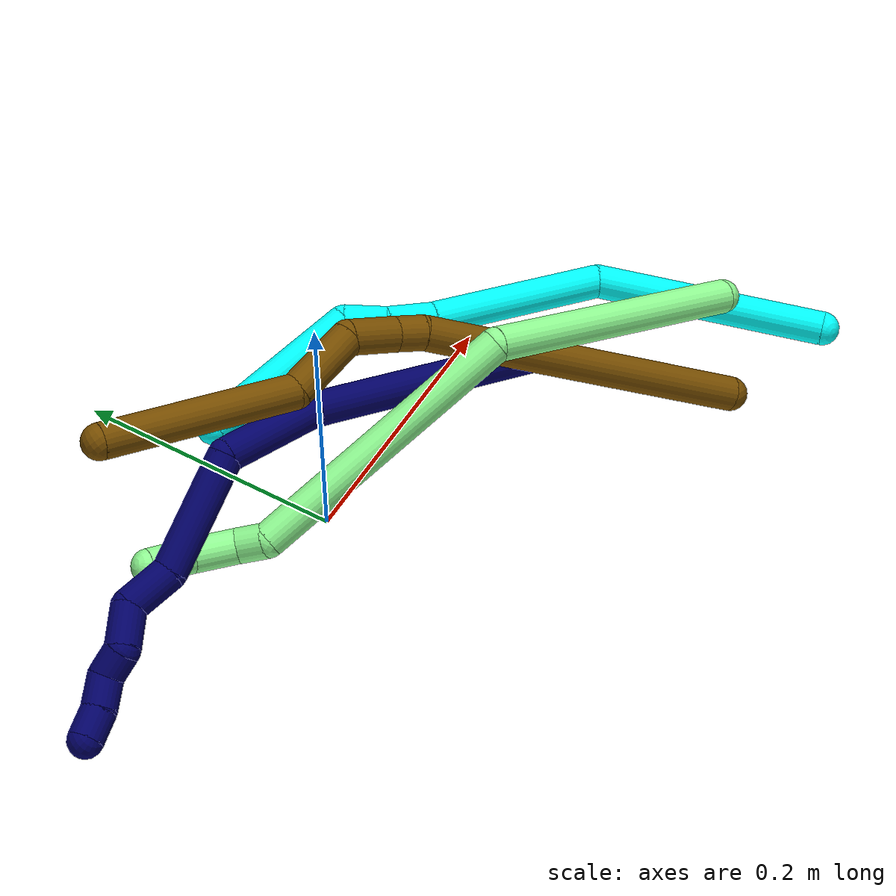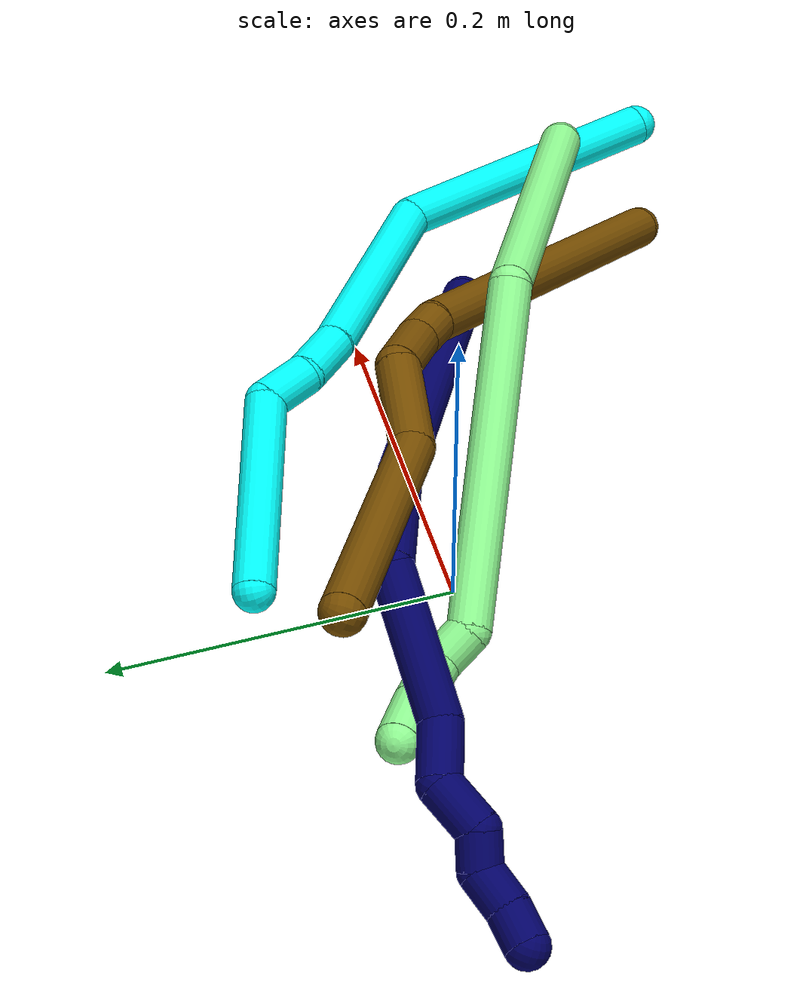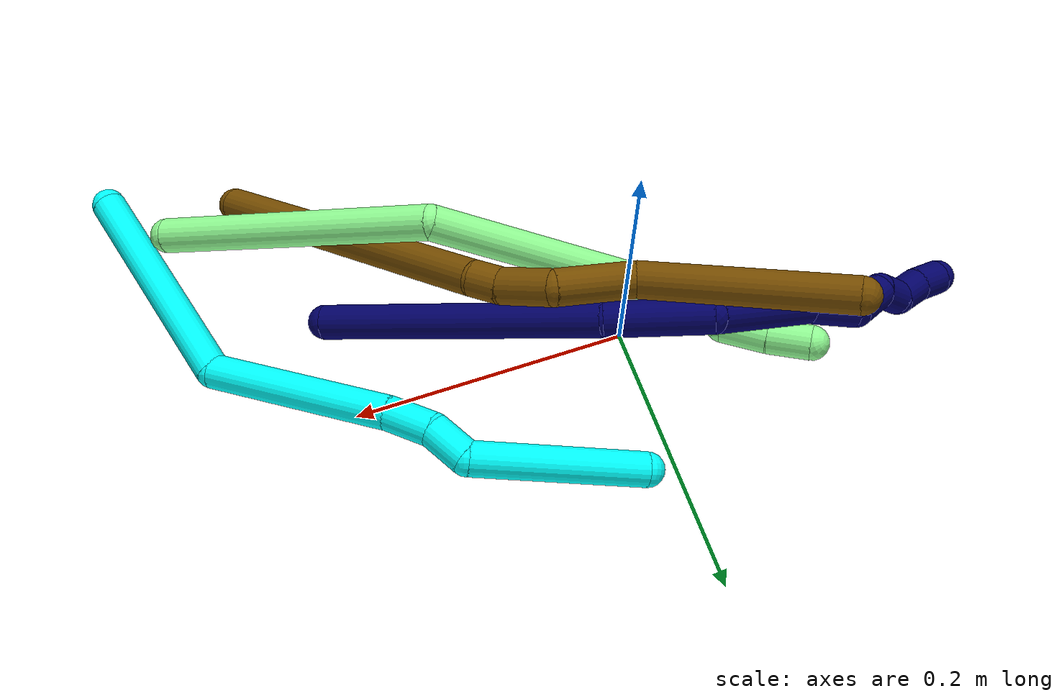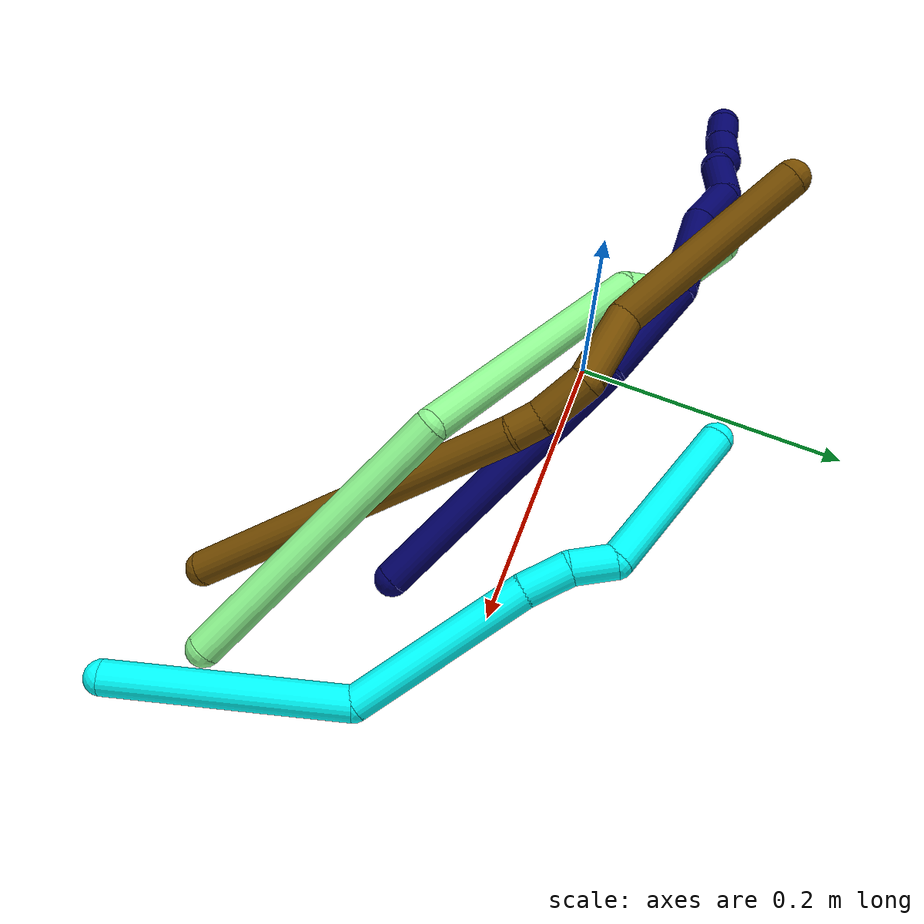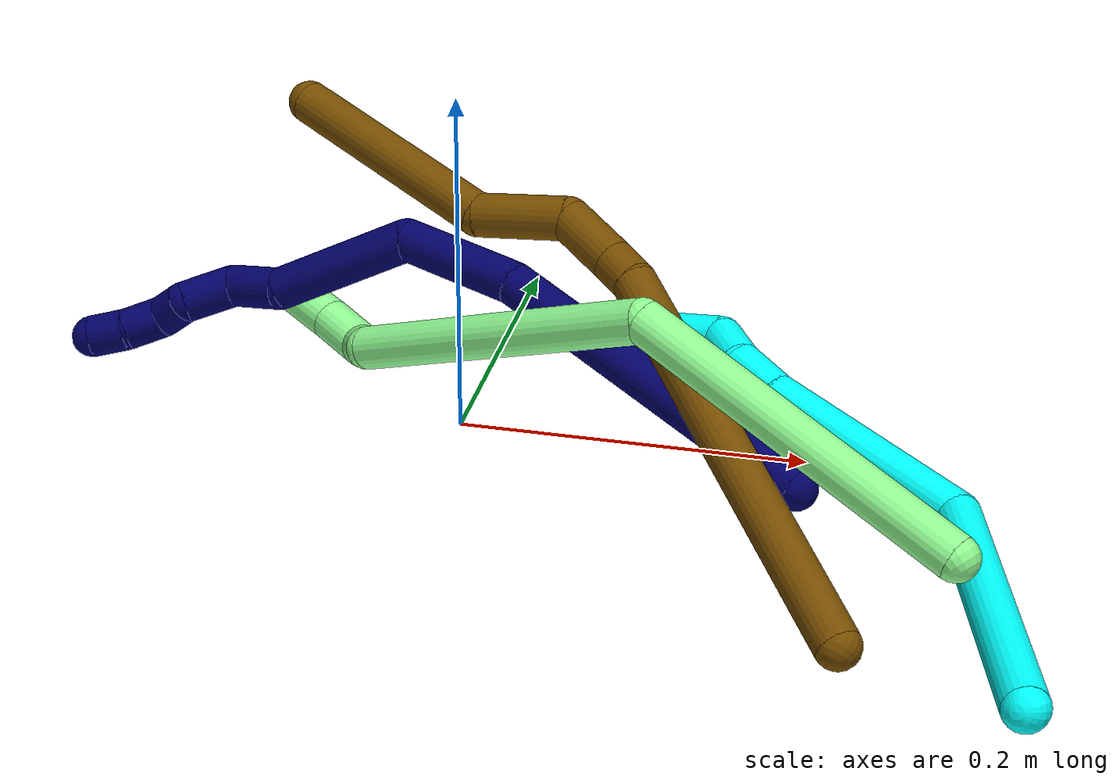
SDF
<sdf version="1.7">
 <world name="default">
  <model name="3">
   <static>0</static>
   <link name="3">
    <collision name="collision-cylinder-e_1_1_4">
     <pose>-0.030642 0.047028 -0.065267 -2.51721 -0.36394 1.03632</pose>
     <geometry><cylinder><radius>0.0125</radius><length>0.172167</length></cylinder></geometry>
     <surface>
      <friction><ode><mu>1.16</mu><mu2>1.16</mu2><slip1>0</slip1><slip2>0</slip2></ode></friction>
      <contact><ode><kp>1e+06</kp><kd>1</kd><max_vel>0</max_vel><min_depth>0.001</min_depth></ode></contact>
     </surface>
    </collision>
    <visual name="visual-cylinder-e_1_1_4">
     <pose>-0.030642 0.047028 -0.065267 -2.51721 -0.36394 1.03632</pose>
     <geometry><cylinder><radius>0.0125</radius><length>0.172167</length></cylinder></geometry>
     <material><ambient>0.003922 1 0.996078 1</ambient></material>
    </visual>
    <collision name="collision-cylinder-e_2_4_5">
     <pose>-0.110341 0.1388 -0.144835 -1.88016 -0.807086 1.05823</pose>
     <geometry><cylinder><radius>0.0125</radius><length>0.135839</length></cylinder></geometry>
     <surface>
      <friction><ode><mu>1.16</mu><mu2>1.16</mu2><slip1>0</slip1><slip2>0</slip2></ode></friction>
      <contact><ode><kp>1e+06</kp><kd>1</kd><max_vel>0</max_vel><min_depth>0.001</min_depth></ode></contact>
     </surface>
    </collision>
    <visual name="visual-cylinder-e_2_4_5">
     <pose>-0.110341 0.1388 -0.144835 -1.88016 -0.807086 1.05823</pose>
     <geometry><cylinder><radius>0.0125</radius><length>0.135839</length></cylinder></geometry>
     <material><ambient>0.003922 1 0.996078 1</ambient></material>
    </visual>
    <collision name="collision-cylinder-e_3_5_6">
     <pose>-0.170704 0.19571 -0.164805 -2.00684 -0.700065 1.04044</pose>
     <geometry><cylinder><radius>0.0125</radius><length>0.035101</length></cylinder></geometry>
     <surface>
      <friction><ode><mu>1.16</mu><mu2>1.16</mu2><slip1>0</slip1><slip2>0</slip2></ode></friction>
      <contact><ode><kp>1e+06</kp><kd>1</kd><max_vel>0</max_vel><min_depth>0.001</min_depth></ode></contact>
     </surface>
    </collision>
    <visual name="visual-cylinder-e_3_5_6">
     <pose>-0.170704 0.19571 -0.164805 -2.00684 -0.700065 1.04044</pose>
     <geometry><cylinder><radius>0.0125</radius><length>0.035101</length></cylinder></geometry>
     <material><ambient>0.003922 1 0.996078 1</ambient></material>
    </visual>
    <collision name="collision-cylinder-e_4_6_7">
     <pose>-0.190387 0.217385 -0.179982 -2.35612 -0.557047 1.20836</pose>
     <geometry><cylinder><radius>0.0125</radius><length>0.031683</length></cylinder></geometry>
     <surface>
      <friction><ode><mu>1.16</mu><mu2>1.16</mu2><slip1>0</slip1><slip2>0</slip2></ode></friction>
      <contact><ode><kp>1e+06</kp><kd>1</kd><max_vel>0</max_vel><min_depth>0.001</min_depth></ode></contact>
     </surface>
    </collision>
    <visual name="visual-cylinder-e_4_6_7">
     <pose>-0.190387 0.217385 -0.179982 -2.35612 -0.557047 1.20836</pose>
     <geometry><cylinder><radius>0.0125</radius><length>0.031683</length></cylinder></geometry>
     <material><ambient>0.003922 1 0.996078 1</ambient></material>
    </visual>
    <collision name="collision-cylinder-e_5_7_2">
     <pose>-0.257874 0.247451 -0.191091 -1.64857 -1.23518 1.30957</pose>
     <geometry><cylinder><radius>0.0125</radius><length>0.12521</length></cylinder></geometry>
     <surface>
      <friction><ode><mu>1.16</mu><mu2>1.16</mu2><slip1>0</slip1><slip2>0</slip2></ode></friction>
      <contact><ode><kp>1e+06</kp><kd>1</kd><max_vel>0</max_vel><min_depth>0.001</min_depth></ode></contact>
     </surface>
    </collision>
    <visual name="visual-cylinder-e_5_7_2">
     <pose>-0.257874 0.247451 -0.191091 -1.64857 -1.23518 1.30957</pose>
     <geometry><cylinder><radius>0.0125</radius><length>0.12521</length></cylinder></geometry>
     <material><ambient>0.003922 1 0.996078 1</ambient></material>
    </visual>
    <collision name="collision-sphere-2">
     <pose>-0.316987 0.268008 -0.192693 0 -0 0</pose>
     <geometry><sphere><radius>0.0125</radius></sphere></geometry>
     <surface>
      <friction><ode><mu>1.16</mu><mu2>1.16</mu2><slip1>0</slip1><slip2>0</slip2></ode></friction>
      <contact><ode><kp>1e+06</kp><kd>1</kd><max_vel>0</max_vel><min_depth>0.001</min_depth></ode></contact>
     </surface>
    </collision>
    <visual name="visual-sphere-2">
     <pose>-0.316987 0.268008 -0.192693 0 -0 0</pose>
     <geometry><sphere><radius>0.0125</radius></sphere></geometry>
     <material><ambient>0.003922 1 0.996078 1</ambient></material>
    </visual>
    <collision name="collision-sphere-7">
     <pose>-0.198762 0.226894 -0.189489 0 -0 0</pose>
     <geometry><sphere><radius>0.0125</radius></sphere></geometry>
     <surface>
      <friction><ode><mu>1.16</mu><mu2>1.16</mu2><slip1>0</slip1><slip2>0</slip2></ode></friction>
      <contact><ode><kp>1e+06</kp><kd>1</kd><max_vel>0</max_vel><min_depth>0.001</min_depth></ode></contact>
     </surface>
    </collision>
    <visual name="visual-sphere-7">
     <pose>-0.198762 0.226894 -0.189489 0 -0 0</pose>
     <geometry><sphere><radius>0.0125</radius></sphere></geometry>
     <material><ambient>0.003922 1 0.996078 1</ambient></material>
    </visual>
    <collision name="collision-sphere-6">
     <pose>-0.182012 0.207876 -0.170474 0 -0 0</pose>
     <geometry><sphere><radius>0.0125</radius></sphere></geometry>
     <surface>
      <friction><ode><mu>1.16</mu><mu2>1.16</mu2><slip1>0</slip1><slip2>0</slip2></ode></friction>
      <contact><ode><kp>1e+06</kp><kd>1</kd><max_vel>0</max_vel><min_depth>0.001</min_depth></ode></contact>
     </surface>
    </collision>
    <visual name="visual-sphere-6">
     <pose>-0.182012 0.207876 -0.170474 0 -0 0</pose>
     <geometry><sphere><radius>0.0125</radius></sphere></geometry>
     <material><ambient>0.003922 1 0.996078 1</ambient></material>
    </visual>
    <collision name="collision-sphere-5">
     <pose>-0.159397 0.183543 -0.159136 0 -0 0</pose>
     <geometry><sphere><radius>0.0125</radius></sphere></geometry>
     <surface>
      <friction><ode><mu>1.16</mu><mu2>1.16</mu2><slip1>0</slip1><slip2>0</slip2></ode></friction>
      <contact><ode><kp>1e+06</kp><kd>1</kd><max_vel>0</max_vel><min_depth>0.001</min_depth></ode></contact>
     </surface>
    </collision>
    <visual name="visual-sphere-5">
     <pose>-0.159397 0.183543 -0.159136 0 -0 0</pose>
     <geometry><sphere><radius>0.0125</radius></sphere></geometry>
     <material><ambient>0.003922 1 0.996078 1</ambient></material>
    </visual>
    <collision name="collision-sphere-1">
     <geometry><sphere><radius>0.0125</radius></sphere></geometry>
     <surface>
      <friction><ode><mu>1.16</mu><mu2>1.16</mu2><slip1>0</slip1><slip2>0</slip2></ode></friction>
      <contact><ode><kp>1e+06</kp><kd>1</kd><max_vel>0</max_vel><min_depth>0.001</min_depth></ode></contact>
     </surface>
    </collision>
    <visual name="visual-sphere-1">
     <geometry><sphere><radius>0.0125</radius></sphere></geometry>
     <material><ambient>0.003922 1 0.996078 1</ambient></material>
    </visual>
    <collision name="collision-sphere-4">
     <pose>-0.061284 0.094056 -0.130534 0 -0 0</pose>
     <geometry><sphere><radius>0.0125</radius></sphere></geometry>
     <surface>
      <friction><ode><mu>1.16</mu><mu2>1.16</mu2><slip1>0</slip1><slip2>0</slip2></ode></friction>
      <contact><ode><kp>1e+06</kp><kd>1</kd><max_vel>0</max_vel><min_depth>0.001</min_depth></ode></contact>
     </surface>
    </collision>
    <visual name="visual-sphere-4">
     <pose>-0.061284 0.094056 -0.130534 0 -0 0</pose>
     <geometry><sphere><radius>0.0125</radius></sphere></geometry>
     <material><ambient>0.003922 1 0.996078 1</ambient></material>
    </visual>
    <inertial>
     <pose>-0.129153 0.143383 -0.13265 0 -0 0</pose>
     <mass>0.5</mass>
     <inertia><ixx>0.000807</ixx><ixy>0</ixy><ixz>0</ixz><iyy>0.000704</iyy><iyz>0</iyz><izz>2e-05</izz></inertia>
    </inertial>
   </link>
   <pose>0.332149 -0.227301 0.011395 1.16739 -0.488312 -0.161545</pose>
  </model>
  <model name="7">
   <static>0</static>
   <link name="7">
    <collision name="collision-cylinder-e_1_1_4">
     <pose>-0.096254 0.012886 0.035741 -0.34603 -1.19486 0.236694</pose>
     <geometry><cylinder><radius>0.0125</radius><length>0.206961</length></cylinder></geometry>
     <surface>
      <friction><ode><mu>1.16</mu><mu2>1.16</mu2><slip1>0</slip1><slip2>0</slip2></ode></friction>
      <contact><ode><kp>1e+06</kp><kd>1</kd><max_vel>0</max_vel><min_depth>0.001</min_depth></ode></contact>
     </surface>
    </collision>
    <visual name="visual-cylinder-e_1_1_4">
     <pose>-0.096254 0.012886 0.035741 -0.34603 -1.19486 0.236694</pose>
     <geometry><cylinder><radius>0.0125</radius><length>0.206961</length></cylinder></geometry>
     <material><ambient>0.003922 0 0.403922 1</ambient></material>
    </visual>
    <collision name="collision-cylinder-e_2_4_5">
     <pose>-0.223674 0.036208 0.088656 -0.546034 -0.998058 0.302896</pose>
     <geometry><cylinder><radius>0.0125</radius><length>0.07417</length></cylinder></geometry>
     <surface>
      <friction><ode><mu>1.16</mu><mu2>1.16</mu2><slip1>0</slip1><slip2>0</slip2></ode></friction>
      <contact><ode><kp>1e+06</kp><kd>1</kd><max_vel>0</max_vel><min_depth>0.001</min_depth></ode></contact>
     </surface>
    </collision>
    <visual name="visual-cylinder-e_2_4_5">
     <pose>-0.223674 0.036208 0.088656 -0.546034 -0.998058 0.302896</pose>
     <geometry><cylinder><radius>0.0125</radius><length>0.07417</length></cylinder></geometry>
     <material><ambient>0.003922 0 0.403922 1</ambient></material>
    </visual>
    <collision name="collision-cylinder-e_3_5_6">
     <pose>-0.268737 0.074872 0.135632 -0.758287 -0.326429 0.131035</pose>
     <geometry><cylinder><radius>0.0125</radius><length>0.086669</length></cylinder></geometry>
     <surface>
      <friction><ode><mu>1.16</mu><mu2>1.16</mu2><slip1>0</slip1><slip2>0</slip2></ode></friction>
      <contact><ode><kp>1e+06</kp><kd>1</kd><max_vel>0</max_vel><min_depth>0.001</min_depth></ode></contact>
     </surface>
    </collision>
    <visual name="visual-cylinder-e_3_5_6">
     <pose>-0.268737 0.074872 0.135632 -0.758287 -0.326429 0.131035</pose>
     <geometry><cylinder><radius>0.0125</radius><length>0.086669</length></cylinder></geometry>
     <material><ambient>0.003922 0 0.403922 1</ambient></material>
    </visual>
    <collision name="collision-cylinder-e_4_6_7">
     <pose>-0.293949 0.109418 0.177322 -0.488548 -0.698868 0.181151</pose>
     <geometry><cylinder><radius>0.0125</radius><length>0.035177</length></cylinder></geometry>
     <surface>
      <friction><ode><mu>1.16</mu><mu2>1.16</mu2><slip1>0</slip1><slip2>0</slip2></ode></friction>
      <contact><ode><kp>1e+06</kp><kd>1</kd><max_vel>0</max_vel><min_depth>0.001</min_depth></ode></contact>
     </surface>
    </collision>
    <visual name="visual-cylinder-e_4_6_7">
     <pose>-0.293949 0.109418 0.177322 -0.488548 -0.698868 0.181151</pose>
     <geometry><cylinder><radius>0.0125</radius><length>0.035177</length></cylinder></geometry>
     <material><ambient>0.003922 0 0.403922 1</ambient></material>
    </visual>
    <collision name="collision-cylinder-e_5_7_8">
     <pose>-0.309413 0.129467 0.194763 -1.18661 -0.273193 0.184854</pose>
     <geometry><cylinder><radius>0.0125</radius><length>0.030759</length></cylinder></geometry>
     <surface>
      <friction><ode><mu>1.16</mu><mu2>1.16</mu2><slip1>0</slip1><slip2>0</slip2></ode></friction>
      <contact><ode><kp>1e+06</kp><kd>1</kd><max_vel>0</max_vel><min_depth>0.001</min_depth></ode></contact>
     </surface>
    </collision>
    <visual name="visual-cylinder-e_5_7_8">
     <pose>-0.309413 0.129467 0.194763 -1.18661 -0.273193 0.184854</pose>
     <geometry><cylinder><radius>0.0125</radius><length>0.030759</length></cylinder></geometry>
     <material><ambient>0.003922 0 0.403922 1</ambient></material>
    </visual>
    <collision name="collision-cylinder-e_6_8_9">
     <pose>-0.315672 0.147642 0.2096 -0.446421 -0.202067 0.046016</pose>
     <geometry><cylinder><radius>0.0125</radius><length>0.021019</length></cylinder></geometry>
     <surface>
      <friction><ode><mu>1.16</mu><mu2>1.16</mu2><slip1>0</slip1><slip2>0</slip2></ode></friction>
      <contact><ode><kp>1e+06</kp><kd>1</kd><max_vel>0</max_vel><min_depth>0.001</min_depth></ode></contact>
     </surface>
    </collision>
    <visual name="visual-cylinder-e_6_8_9">
     <pose>-0.315672 0.147642 0.2096 -0.446421 -0.202067 0.046016</pose>
     <geometry><cylinder><radius>0.0125</radius><length>0.021019</length></cylinder></geometry>
     <material><ambient>0.003922 0 0.403922 1</ambient></material>
    </visual>
    <collision name="collision-cylinder-e_7_9_10">
     <pose>-0.321056 0.16222 0.223901 -1.11126 -0.281971 0.175785</pose>
     <geometry><cylinder><radius>0.0125</radius><length>0.02354</length></cylinder></geometry>
     <surface>
      <friction><ode><mu>1.16</mu><mu2>1.16</mu2><slip1>0</slip1><slip2>0</slip2></ode></friction>
      <contact><ode><kp>1e+06</kp><kd>1</kd><max_vel>0</max_vel><min_depth>0.001</min_depth></ode></contact>
     </surface>
    </collision>
    <visual name="visual-cylinder-e_7_9_10">
     <pose>-0.321056 0.16222 0.223901 -1.11126 -0.281971 0.175785</pose>
     <geometry><cylinder><radius>0.0125</radius><length>0.02354</length></cylinder></geometry>
     <material><ambient>0.003922 0 0.403922 1</ambient></material>
    </visual>
    <collision name="collision-cylinder-e_8_10_2">
     <pose>-0.329041 0.180435 0.234417 -0.973172 -0.448862 0.240358</pose>
     <geometry><cylinder><radius>0.0125</radius><length>0.021705</length></cylinder></geometry>
     <surface>
      <friction><ode><mu>1.16</mu><mu2>1.16</mu2><slip1>0</slip1><slip2>0</slip2></ode></friction>
      <contact><ode><kp>1e+06</kp><kd>1</kd><max_vel>0</max_vel><min_depth>0.001</min_depth></ode></contact>
     </surface>
    </collision>
    <visual name="visual-cylinder-e_8_10_2">
     <pose>-0.329041 0.180435 0.234417 -0.973172 -0.448862 0.240358</pose>
     <geometry><cylinder><radius>0.0125</radius><length>0.021705</length></cylinder></geometry>
     <material><ambient>0.003922 0 0.403922 1</ambient></material>
    </visual>
    <collision name="collision-sphere-2">
     <pose>-0.33375 0.188518 0.239918 0 -0 0</pose>
     <geometry><sphere><radius>0.0125</radius></sphere></geometry>
     <surface>
      <friction><ode><mu>1.16</mu><mu2>1.16</mu2><slip1>0</slip1><slip2>0</slip2></ode></friction>
      <contact><ode><kp>1e+06</kp><kd>1</kd><max_vel>0</max_vel><min_depth>0.001</min_depth></ode></contact>
     </surface>
    </collision>
    <visual name="visual-sphere-2">
     <pose>-0.33375 0.188518 0.239918 0 -0 0</pose>
     <geometry><sphere><radius>0.0125</radius></sphere></geometry>
     <material><ambient>0.003922 0 0.403922 1</ambient></material>
    </visual>
    <collision name="collision-sphere-10">
     <pose>-0.324331 0.172352 0.228915 0 -0 0</pose>
     <geometry><sphere><radius>0.0125</radius></sphere></geometry>
     <surface>
      <friction><ode><mu>1.16</mu><mu2>1.16</mu2><slip1>0</slip1><slip2>0</slip2></ode></friction>
      <contact><ode><kp>1e+06</kp><kd>1</kd><max_vel>0</max_vel><min_depth>0.001</min_depth></ode></contact>
     </surface>
    </collision>
    <visual name="visual-sphere-10">
     <pose>-0.324331 0.172352 0.228915 0 -0 0</pose>
     <geometry><sphere><radius>0.0125</radius></sphere></geometry>
     <material><ambient>0.003922 0 0.403922 1</ambient></material>
    </visual>
    <collision name="collision-sphere-9">
     <pose>-0.317781 0.152087 0.218886 0 -0 0</pose>
     <geometry><sphere><radius>0.0125</radius></sphere></geometry>
     <surface>
      <friction><ode><mu>1.16</mu><mu2>1.16</mu2><slip1>0</slip1><slip2>0</slip2></ode></friction>
      <contact><ode><kp>1e+06</kp><kd>1</kd><max_vel>0</max_vel><min_depth>0.001</min_depth></ode></contact>
     </surface>
    </collision>
    <visual name="visual-sphere-9">
     <pose>-0.317781 0.152087 0.218886 0 -0 0</pose>
     <geometry><sphere><radius>0.0125</radius></sphere></geometry>
     <material><ambient>0.003922 0 0.403922 1</ambient></material>
    </visual>
    <collision name="collision-sphere-4">
     <pose>-0.192507 0.025772 0.071481 0 -0 0</pose>
     <geometry><sphere><radius>0.0125</radius></sphere></geometry>
     <surface>
      <friction><ode><mu>1.16</mu><mu2>1.16</mu2><slip1>0</slip1><slip2>0</slip2></ode></friction>
      <contact><ode><kp>1e+06</kp><kd>1</kd><max_vel>0</max_vel><min_depth>0.001</min_depth></ode></contact>
     </surface>
    </collision>
    <visual name="visual-sphere-4">
     <pose>-0.192507 0.025772 0.071481 0 -0 0</pose>
     <geometry><sphere><radius>0.0125</radius></sphere></geometry>
     <material><ambient>0.003922 0 0.403922 1</ambient></material>
    </visual>
    <collision name="collision-sphere-1">
     <geometry><sphere><radius>0.0125</radius></sphere></geometry>
     <surface>
      <friction><ode><mu>1.16</mu><mu2>1.16</mu2><slip1>0</slip1><slip2>0</slip2></ode></friction>
      <contact><ode><kp>1e+06</kp><kd>1</kd><max_vel>0</max_vel><min_depth>0.001</min_depth></ode></contact>
     </surface>
    </collision>
    <visual name="visual-sphere-1">
     <geometry><sphere><radius>0.0125</radius></sphere></geometry>
     <material><ambient>0.003922 0 0.403922 1</ambient></material>
    </visual>
    <collision name="collision-sphere-8">
     <pose>-0.313563 0.143197 0.200313 0 -0 0</pose>
     <geometry><sphere><radius>0.0125</radius></sphere></geometry>
     <surface>
      <friction><ode><mu>1.16</mu><mu2>1.16</mu2><slip1>0</slip1><slip2>0</slip2></ode></friction>
      <contact><ode><kp>1e+06</kp><kd>1</kd><max_vel>0</max_vel><min_depth>0.001</min_depth></ode></contact>
     </surface>
    </collision>
    <visual name="visual-sphere-8">
     <pose>-0.313563 0.143197 0.200313 0 -0 0</pose>
     <geometry><sphere><radius>0.0125</radius></sphere></geometry>
     <material><ambient>0.003922 0 0.403922 1</ambient></material>
    </visual>
    <collision name="collision-sphere-5">
     <pose>-0.254841 0.046645 0.105832 0 -0 0</pose>
     <geometry><sphere><radius>0.0125</radius></sphere></geometry>
     <surface>
      <friction><ode><mu>1.16</mu><mu2>1.16</mu2><slip1>0</slip1><slip2>0</slip2></ode></friction>
      <contact><ode><kp>1e+06</kp><kd>1</kd><max_vel>0</max_vel><min_depth>0.001</min_depth></ode></contact>
     </surface>
    </collision>
    <visual name="visual-sphere-5">
     <pose>-0.254841 0.046645 0.105832 0 -0 0</pose>
     <geometry><sphere><radius>0.0125</radius></sphere></geometry>
     <material><ambient>0.003922 0 0.403922 1</ambient></material>
    </visual>
    <collision name="collision-sphere-6">
     <pose>-0.282633 0.103098 0.165432 0 -0 0</pose>
     <geometry><sphere><radius>0.0125</radius></sphere></geometry>
     <surface>
      <friction><ode><mu>1.16</mu><mu2>1.16</mu2><slip1>0</slip1><slip2>0</slip2></ode></friction>
      <contact><ode><kp>1e+06</kp><kd>1</kd><max_vel>0</max_vel><min_depth>0.001</min_depth></ode></contact>
     </surface>
    </collision>
    <visual name="visual-sphere-6">
     <pose>-0.282633 0.103098 0.165432 0 -0 0</pose>
     <geometry><sphere><radius>0.0125</radius></sphere></geometry>
     <material><ambient>0.003922 0 0.403922 1</ambient></material>
    </visual>
    <collision name="collision-sphere-7">
     <pose>-0.305264 0.115738 0.189212 0 -0 0</pose>
     <geometry><sphere><radius>0.0125</radius></sphere></geometry>
     <surface>
      <friction><ode><mu>1.16</mu><mu2>1.16</mu2><slip1>0</slip1><slip2>0</slip2></ode></friction>
      <contact><ode><kp>1e+06</kp><kd>1</kd><max_vel>0</max_vel><min_depth>0.001</min_depth></ode></contact>
     </surface>
    </collision>
    <visual name="visual-sphere-7">
     <pose>-0.305264 0.115738 0.189212 0 -0 0</pose>
     <geometry><sphere><radius>0.0125</radius></sphere></geometry>
     <material><ambient>0.003922 0 0.403922 1</ambient></material>
    </visual>
    <inertial>
     <pose>-0.201988 0.061022 0.10544 0 -0 0</pose>
     <mass>0.5</mass>
     <inertia>
      <ixx>0.000405</ixx>
      <ixy>0</ixy>
      <ixz>0</ixz>
      <iyy>0.00092</iyy>
      <iyz>0</iyz>
      <izz>0.000619</izz>
     </inertia>
    </inertial>
   </link>
   <pose>0.201776 -0.068545 0.022889 -2.93472 0.662008 -0.535072</pose>
  </model>
  <model name="12">
   <static>0</static>
   <link name="12">
    <collision name="collision-cylinder-e_1_1_4">
     <pose>-0.089553 0.031037 -0.07738 -2.76014 -0.821124 2.30664</pose>
     <geometry><cylinder><radius>0.0125</radius><length>0.244709</length></cylinder></geometry>
     <surface>
      <friction><ode><mu>1.16</mu><mu2>1.16</mu2><slip1>0</slip1><slip2>0</slip2></ode></friction>
      <contact><ode><kp>1e+06</kp><kd>1</kd><max_vel>0</max_vel><min_depth>0.001</min_depth></ode></contact>
     </surface>
    </collision>
    <visual name="visual-cylinder-e_1_1_4">
     <pose>-0.089553 0.031037 -0.07738 -2.76014 -0.821124 2.30664</pose>
     <geometry><cylinder><radius>0.0125</radius><length>0.244709</length></cylinder></geometry>
     <material><ambient>0.466667 0.301961 0 1</ambient></material>
    </visual>
    <collision name="collision-cylinder-e_2_4_5">
     <pose>-0.188293 0.063818 -0.159695 -2.80212 -1.05289 2.56804</pose>
     <geometry><cylinder><radius>0.0125</radius><length>0.021149</length></cylinder></geometry>
     <surface>
      <friction><ode><mu>1.16</mu><mu2>1.16</mu2><slip1>0</slip1><slip2>0</slip2></ode></friction>
      <contact><ode><kp>1e+06</kp><kd>1</kd><max_vel>0</max_vel><min_depth>0.001</min_depth></ode></contact>
     </surface>
    </collision>
    <visual name="visual-cylinder-e_2_4_5">
     <pose>-0.188293 0.063818 -0.159695 -2.80212 -1.05289 2.56804</pose>
     <geometry><cylinder><radius>0.0125</radius><length>0.021149</length></cylinder></geometry>
     <material><ambient>0.466667 0.301961 0 1</ambient></material>
    </visual>
    <collision name="collision-cylinder-e_3_5_6">
     <pose>-0.213338 0.072285 -0.171813 -2.38908 -1.01549 1.90671</pose>
     <geometry><cylinder><radius>0.0125</radius><length>0.037322</length></cylinder></geometry>
     <surface>
      <friction><ode><mu>1.16</mu><mu2>1.16</mu2><slip1>0</slip1><slip2>0</slip2></ode></friction>
      <contact><ode><kp>1e+06</kp><kd>1</kd><max_vel>0</max_vel><min_depth>0.001</min_depth></ode></contact>
     </surface>
    </collision>
    <visual name="visual-cylinder-e_3_5_6">
     <pose>-0.213338 0.072285 -0.171813 -2.38908 -1.01549 1.90671</pose>
     <geometry><cylinder><radius>0.0125</radius><length>0.037322</length></cylinder></geometry>
     <material><ambient>0.466667 0.301961 0 1</ambient></material>
    </visual>
    <collision name="collision-cylinder-e_4_6_7">
     <pose>-0.255497 0.083267 -0.172987 -0.616487 -1.29782 0.473918</pose>
     <geometry><cylinder><radius>0.0125</radius><length>0.054627</length></cylinder></geometry>
     <surface>
      <friction><ode><mu>1.16</mu><mu2>1.16</mu2><slip1>0</slip1><slip2>0</slip2></ode></friction>
      <contact><ode><kp>1e+06</kp><kd>1</kd><max_vel>0</max_vel><min_depth>0.001</min_depth></ode></contact>
     </surface>
    </collision>
    <visual name="visual-cylinder-e_4_6_7">
     <pose>-0.255497 0.083267 -0.172987 -0.616487 -1.29782 0.473918</pose>
     <geometry><cylinder><radius>0.0125</radius><length>0.054627</length></cylinder></geometry>
     <material><ambient>0.466667 0.301961 0 1</ambient></material>
    </visual>
    <collision name="collision-cylinder-e_5_7_2">
     <pose>-0.3477 0.105828 -0.18639 -2.38555 -1.18612 2.07671</pose>
     <geometry><cylinder><radius>0.0125</radius><length>0.142193</length></cylinder></geometry>
     <surface>
      <friction><ode><mu>1.16</mu><mu2>1.16</mu2><slip1>0</slip1><slip2>0</slip2></ode></friction>
      <contact><ode><kp>1e+06</kp><kd>1</kd><max_vel>0</max_vel><min_depth>0.001</min_depth></ode></contact>
     </surface>
    </collision>
    <visual name="visual-cylinder-e_5_7_2">
     <pose>-0.3477 0.105828 -0.18639 -2.38555 -1.18612 2.07671</pose>
     <geometry><cylinder><radius>0.0125</radius><length>0.142193</length></cylinder></geometry>
     <material><ambient>0.466667 0.301961 0 1</ambient></material>
    </visual>
    <collision name="collision-sphere-2">
     <pose>-0.413601 0.124131 -0.205801 0 -0 0</pose>
     <geometry><sphere><radius>0.0125</radius></sphere></geometry>
     <surface>
      <friction><ode><mu>1.16</mu><mu2>1.16</mu2><slip1>0</slip1><slip2>0</slip2></ode></friction>
      <contact><ode><kp>1e+06</kp><kd>1</kd><max_vel>0</max_vel><min_depth>0.001</min_depth></ode></contact>
     </surface>
    </collision>
    <visual name="visual-sphere-2">
     <pose>-0.413601 0.124131 -0.205801 0 -0 0</pose>
     <geometry><sphere><radius>0.0125</radius></sphere></geometry>
     <material><ambient>0.466667 0.301961 0 1</ambient></material>
    </visual>
    <collision name="collision-sphere-7">
     <pose>-0.2818 0.087524 -0.166979 0 -0 0</pose>
     <geometry><sphere><radius>0.0125</radius></sphere></geometry>
     <surface>
      <friction><ode><mu>1.16</mu><mu2>1.16</mu2><slip1>0</slip1><slip2>0</slip2></ode></friction>
      <contact><ode><kp>1e+06</kp><kd>1</kd><max_vel>0</max_vel><min_depth>0.001</min_depth></ode></contact>
     </surface>
    </collision>
    <visual name="visual-sphere-7">
     <pose>-0.2818 0.087524 -0.166979 0 -0 0</pose>
     <geometry><sphere><radius>0.0125</radius></sphere></geometry>
     <material><ambient>0.466667 0.301961 0 1</ambient></material>
    </visual>
    <collision name="collision-sphere-6">
     <pose>-0.229195 0.079009 -0.178995 0 -0 0</pose>
     <geometry><sphere><radius>0.0125</radius></sphere></geometry>
     <surface>
      <friction><ode><mu>1.16</mu><mu2>1.16</mu2><slip1>0</slip1><slip2>0</slip2></ode></friction>
      <contact><ode><kp>1e+06</kp><kd>1</kd><max_vel>0</max_vel><min_depth>0.001</min_depth></ode></contact>
     </surface>
    </collision>
    <visual name="visual-sphere-6">
     <pose>-0.229195 0.079009 -0.178995 0 -0 0</pose>
     <geometry><sphere><radius>0.0125</radius></sphere></geometry>
     <material><ambient>0.466667 0.301961 0 1</ambient></material>
    </visual>
    <collision name="collision-sphere-5">
     <pose>-0.197481 0.065561 -0.164632 0 -0 0</pose>
     <geometry><sphere><radius>0.0125</radius></sphere></geometry>
     <surface>
      <friction><ode><mu>1.16</mu><mu2>1.16</mu2><slip1>0</slip1><slip2>0</slip2></ode></friction>
      <contact><ode><kp>1e+06</kp><kd>1</kd><max_vel>0</max_vel><min_depth>0.001</min_depth></ode></contact>
     </surface>
    </collision>
    <visual name="visual-sphere-5">
     <pose>-0.197481 0.065561 -0.164632 0 -0 0</pose>
     <geometry><sphere><radius>0.0125</radius></sphere></geometry>
     <material><ambient>0.466667 0.301961 0 1</ambient></material>
    </visual>
    <collision name="collision-sphere-1">
     <geometry><sphere><radius>0.0125</radius></sphere></geometry>
     <surface>
      <friction><ode><mu>1.16</mu><mu2>1.16</mu2><slip1>0</slip1><slip2>0</slip2></ode></friction>
      <contact><ode><kp>1e+06</kp><kd>1</kd><max_vel>0</max_vel><min_depth>0.001</min_depth></ode></contact>
     </surface>
    </collision>
    <visual name="visual-sphere-1">
     <geometry><sphere><radius>0.0125</radius></sphere></geometry>
     <material><ambient>0.466667 0.301961 0 1</ambient></material>
    </visual>
    <collision name="collision-sphere-4">
     <pose>-0.179105 0.062075 -0.154759 0 -0 0</pose>
     <geometry><sphere><radius>0.0125</radius></sphere></geometry>
     <surface>
      <friction><ode><mu>1.16</mu><mu2>1.16</mu2><slip1>0</slip1><slip2>0</slip2></ode></friction>
      <contact><ode><kp>1e+06</kp><kd>1</kd><max_vel>0</max_vel><min_depth>0.001</min_depth></ode></contact>
     </surface>
    </collision>
    <visual name="visual-sphere-4">
     <pose>-0.179105 0.062075 -0.154759 0 -0 0</pose>
     <geometry><sphere><radius>0.0125</radius></sphere></geometry>
     <material><ambient>0.466667 0.301961 0 1</ambient></material>
    </visual>
    <inertial>
     <pose>-0.194513 0.062478 -0.129357 0 -0 0</pose>
     <mass>0.5</mass>
     <inertia><ixx>7e-05</ixx><ixy>0</ixy><ixz>0</ixz><iyy>0.001977</iyy><iyz>0</iyz><izz>0.000753</izz></inertia>
    </inertial>
   </link>
   <pose>0.240061 -0.196227 0.011716 2.06914 -0.156689 -0.418244</pose>
  </model>
  <model name="13">
   <static>0</static>
   <link name="13">
    <collision name="collision-cylinder-e_1_1_4">
     <pose>-0.04121 -0.009867 0.094855 0.103647 -0.407887 -0.021455</pose>
     <geometry><cylinder><radius>0.0125</radius><length>0.20778</length></cylinder></geometry>
     <surface>
      <friction><ode><mu>1.16</mu><mu2>1.16</mu2><slip1>0</slip1><slip2>0</slip2></ode></friction>
      <contact><ode><kp>1e+06</kp><kd>1</kd><max_vel>0</max_vel><min_depth>0.001</min_depth></ode></contact>
     </surface>
    </collision>
    <visual name="visual-cylinder-e_1_1_4">
     <pose>-0.04121 -0.009867 0.094855 0.103647 -0.407887 -0.021455</pose>
     <geometry><cylinder><radius>0.0125</radius><length>0.20778</length></cylinder></geometry>
     <material><ambient>0.564706 0.984314 0.572549 1</ambient></material>
    </visual>
    <collision name="collision-cylinder-e_2_4_5">
     <pose>-0.173008 -0.036377 0.235031 0.351939 -1.08113 -0.212635</pose>
     <geometry><cylinder><radius>0.0125</radius><length>0.205302</length></cylinder></geometry>
     <surface>
      <friction><ode><mu>1.16</mu><mu2>1.16</mu2><slip1>0</slip1><slip2>0</slip2></ode></friction>
      <contact><ode><kp>1e+06</kp><kd>1</kd><max_vel>0</max_vel><min_depth>0.001</min_depth></ode></contact>
     </surface>
    </collision>
    <visual name="visual-cylinder-e_2_4_5">
     <pose>-0.173008 -0.036377 0.235031 0.351939 -1.08113 -0.212635</pose>
     <geometry><cylinder><radius>0.0125</radius><length>0.205302</length></cylinder></geometry>
     <material><ambient>0.564706 0.984314 0.572549 1</ambient></material>
    </visual>
    <collision name="collision-cylinder-e_3_5_6">
     <pose>-0.273246 -0.047433 0.284002 -0.992146 -0.965751 0.552952</pose>
     <geometry><cylinder><radius>0.0125</radius><length>0.023464</length></cylinder></geometry>
     <surface>
      <friction><ode><mu>1.16</mu><mu2>1.16</mu2><slip1>0</slip1><slip2>0</slip2></ode></friction>
      <contact><ode><kp>1e+06</kp><kd>1</kd><max_vel>0</max_vel><min_depth>0.001</min_depth></ode></contact>
     </surface>
    </collision>
    <visual name="visual-cylinder-e_3_5_6">
     <pose>-0.273246 -0.047433 0.284002 -0.992146 -0.965751 0.552952</pose>
     <geometry><cylinder><radius>0.0125</radius><length>0.023464</length></cylinder></geometry>
     <material><ambient>0.564706 0.984314 0.572549 1</ambient></material>
    </visual>
    <collision name="collision-cylinder-e_4_6_7">
     <pose>-0.292165 -0.040297 0.301097 -0.114762 -0.600524 0.035568</pose>
     <geometry><cylinder><radius>0.0125</radius><length>0.03281</length></cylinder></geometry>
     <surface>
      <friction><ode><mu>1.16</mu><mu2>1.16</mu2><slip1>0</slip1><slip2>0</slip2></ode></friction>
      <contact><ode><kp>1e+06</kp><kd>1</kd><max_vel>0</max_vel><min_depth>0.001</min_depth></ode></contact>
     </surface>
    </collision>
    <visual name="visual-cylinder-e_4_6_7">
     <pose>-0.292165 -0.040297 0.301097 -0.114762 -0.600524 0.035568</pose>
     <geometry><cylinder><radius>0.0125</radius><length>0.03281</length></cylinder></geometry>
     <material><ambient>0.564706 0.984314 0.572549 1</ambient></material>
    </visual>
    <collision name="collision-cylinder-e_5_7_2">
     <pose>-0.309459 -0.038618 0.327596 -0.009863 -0.551117 0.002789</pose>
     <geometry><cylinder><radius>0.0125</radius><length>0.030644</length></cylinder></geometry>
     <surface>
      <friction><ode><mu>1.16</mu><mu2>1.16</mu2><slip1>0</slip1><slip2>0</slip2></ode></friction>
      <contact><ode><kp>1e+06</kp><kd>1</kd><max_vel>0</max_vel><min_depth>0.001</min_depth></ode></contact>
     </surface>
    </collision>
    <visual name="visual-cylinder-e_5_7_2">
     <pose>-0.309459 -0.038618 0.327596 -0.009863 -0.551117 0.002789</pose>
     <geometry><cylinder><radius>0.0125</radius><length>0.030644</length></cylinder></geometry>
     <material><ambient>0.564706 0.984314 0.572549 1</ambient></material>
    </visual>
    <collision name="collision-sphere-2">
     <pose>-0.317482 -0.038489 0.340649 0 -0 0</pose>
     <geometry><sphere><radius>0.0125</radius></sphere></geometry>
     <surface>
      <friction><ode><mu>1.16</mu><mu2>1.16</mu2><slip1>0</slip1><slip2>0</slip2></ode></friction>
      <contact><ode><kp>1e+06</kp><kd>1</kd><max_vel>0</max_vel><min_depth>0.001</min_depth></ode></contact>
     </surface>
    </collision>
    <visual name="visual-sphere-2">
     <pose>-0.317482 -0.038489 0.340649 0 -0 0</pose>
     <geometry><sphere><radius>0.0125</radius></sphere></geometry>
     <material><ambient>0.564706 0.984314 0.572549 1</ambient></material>
    </visual>
    <collision name="collision-sphere-7">
     <pose>-0.301435 -0.038747 0.314543 0 -0 0</pose>
     <geometry><sphere><radius>0.0125</radius></sphere></geometry>
     <surface>
      <friction><ode><mu>1.16</mu><mu2>1.16</mu2><slip1>0</slip1><slip2>0</slip2></ode></friction>
      <contact><ode><kp>1e+06</kp><kd>1</kd><max_vel>0</max_vel><min_depth>0.001</min_depth></ode></contact>
     </surface>
    </collision>
    <visual name="visual-sphere-7">
     <pose>-0.301435 -0.038747 0.314543 0 -0 0</pose>
     <geometry><sphere><radius>0.0125</radius></sphere></geometry>
     <material><ambient>0.564706 0.984314 0.572549 1</ambient></material>
    </visual>
    <collision name="collision-sphere-6">
     <pose>-0.282895 -0.041846 0.287651 0 -0 0</pose>
     <geometry><sphere><radius>0.0125</radius></sphere></geometry>
     <surface>
      <friction><ode><mu>1.16</mu><mu2>1.16</mu2><slip1>0</slip1><slip2>0</slip2></ode></friction>
      <contact><ode><kp>1e+06</kp><kd>1</kd><max_vel>0</max_vel><min_depth>0.001</min_depth></ode></contact>
     </surface>
    </collision>
    <visual name="visual-sphere-6">
     <pose>-0.282895 -0.041846 0.287651 0 -0 0</pose>
     <geometry><sphere><radius>0.0125</radius></sphere></geometry>
     <material><ambient>0.564706 0.984314 0.572549 1</ambient></material>
    </visual>
    <collision name="collision-sphere-5">
     <pose>-0.263597 -0.05302 0.280352 0 -0 0</pose>
     <geometry><sphere><radius>0.0125</radius></sphere></geometry>
     <surface>
      <friction><ode><mu>1.16</mu><mu2>1.16</mu2><slip1>0</slip1><slip2>0</slip2></ode></friction>
      <contact><ode><kp>1e+06</kp><kd>1</kd><max_vel>0</max_vel><min_depth>0.001</min_depth></ode></contact>
     </surface>
    </collision>
    <visual name="visual-sphere-5">
     <pose>-0.263597 -0.05302 0.280352 0 -0 0</pose>
     <geometry><sphere><radius>0.0125</radius></sphere></geometry>
     <material><ambient>0.564706 0.984314 0.572549 1</ambient></material>
    </visual>
    <collision name="collision-sphere-1">
     <geometry><sphere><radius>0.0125</radius></sphere></geometry>
     <surface>
      <friction><ode><mu>1.16</mu><mu2>1.16</mu2><slip1>0</slip1><slip2>0</slip2></ode></friction>
      <contact><ode><kp>1e+06</kp><kd>1</kd><max_vel>0</max_vel><min_depth>0.001</min_depth></ode></contact>
     </surface>
    </collision>
    <visual name="visual-sphere-1">
     <geometry><sphere><radius>0.0125</radius></sphere></geometry>
     <material><ambient>0.564706 0.984314 0.572549 1</ambient></material>
    </visual>
    <collision name="collision-sphere-4">
     <pose>-0.08242 -0.019734 0.18971 0 -0 0</pose>
     <geometry><sphere><radius>0.0125</radius></sphere></geometry>
     <surface>
      <friction><ode><mu>1.16</mu><mu2>1.16</mu2><slip1>0</slip1><slip2>0</slip2></ode></friction>
      <contact><ode><kp>1e+06</kp><kd>1</kd><max_vel>0</max_vel><min_depth>0.001</min_depth></ode></contact>
     </surface>
    </collision>
    <visual name="visual-sphere-4">
     <pose>-0.08242 -0.019734 0.18971 0 -0 0</pose>
     <geometry><sphere><radius>0.0125</radius></sphere></geometry>
     <material><ambient>0.564706 0.984314 0.572549 1</ambient></material>
    </visual>
    <inertial>
     <pose>-0.139124 -0.026274 0.189086 0 -0 0</pose>
     <mass>0.5</mass>
     <inertia>
      <ixx>0.000925</ixx>
      <ixy>0</ixy>
      <ixz>0</ixz>
      <iyy>0.001388</iyy>
      <iyz>0</iyz>
      <izz>0.001164</izz>
     </inertia>
    </inertial>
   </link>
   <pose>0.29191 -0.160493 0.047719 0.018927 -0.839284 -0.603486</pose>
  </model>
 </world>
</sdf>
